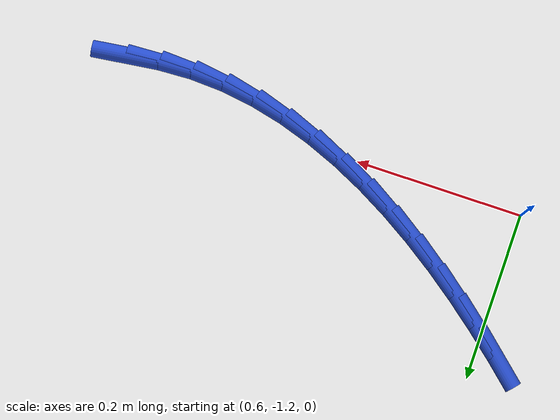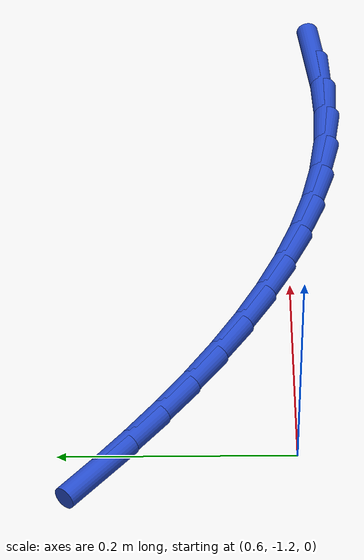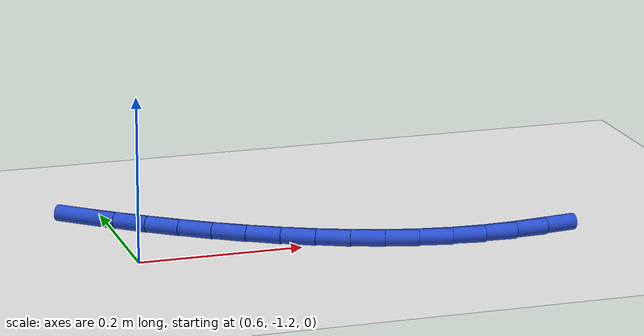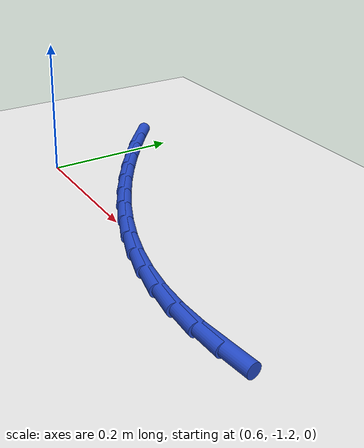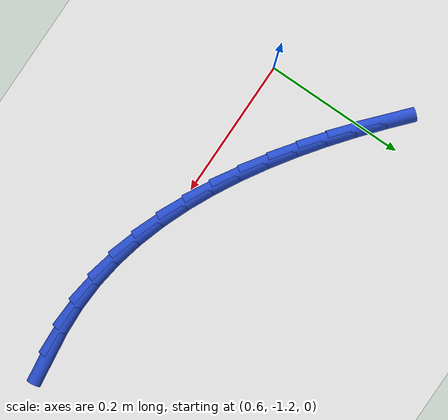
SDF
<sdf version="1.6">
 <world name="default">
  <model name="ground_plane">
   <static>1</static>
   <link name="link">
    <collision name="collision">
     <geometry><plane><normal>0 0 1</normal><size>100 100</size></plane></geometry>
     <surface><friction><ode><mu>100</mu><mu2>50</mu2></ode></friction></surface>
    </collision>
    <visual name="visual">
     <cast_shadows>0</cast_shadows>
     <geometry><plane><normal>0 0 1</normal><size>100 100</size></plane></geometry>
     <material>
      <script><uri>file://media/materials/scripts/gazebo.material</uri><name>Gazebo/WhiteGlow</name></script>
     </material>
    </visual>
   </link>
  </model>
  <model name="line">
   <link name="link_136">
    <pose>1.0949674980373876 -1.2326331208898942 0.01 0 1.57 0.12412468484557429</pose>
    <collision name="collision">
     <geometry><cylinder><radius>0.01</radius><length>0.08</length></cylinder></geometry>
    </collision>
    <visual name="visual">
     <material>
      <script><name>Gazebo/Blue</name><uri>file://media/materials/scripts/gazebo.material</uri></script>
     </material>
     <geometry><cylinder><radius>0.01</radius><length>0.08</length></cylinder></geometry>
    </visual>
   </link>
   <link name="link_137">
    <pose>1.0548576545804693 -1.2376374695670258 0.01 0 1.57 0.044833859428588925</pose>
    <collision name="collision">
     <geometry><cylinder><radius>0.01</radius><length>0.08</length></cylinder></geometry>
    </collision>
    <visual name="visual">
     <material>
      <script><name>Gazebo/Blue</name><uri>file://media/materials/scripts/gazebo.material</uri></script>
     </material>
     <geometry><cylinder><radius>0.01</radius><length>0.08</length></cylinder></geometry>
    </visual>
   </link>
   <link name="link_138">
    <pose>1.014861260041267 -1.2394318647481926 0.01 0 1.57 -0.04863371327911055</pose>
    <collision name="collision">
     <geometry><cylinder><radius>0.01</radius><length>0.08</length></cylinder></geometry>
    </collision>
    <visual name="visual">
     <material>
      <script><name>Gazebo/Blue</name><uri>file://media/materials/scripts/gazebo.material</uri></script>
     </material>
     <geometry><cylinder><radius>0.01</radius><length>0.08</length></cylinder></geometry>
    </visual>
   </link>
   <link name="link_139">
    <pose>0.9751271936048391 -1.2374979245702544 0.01 0 1.57 -0.14264046209608153</pose>
    <collision name="collision">
     <geometry><cylinder><radius>0.01</radius><length>0.08</length></cylinder></geometry>
    </collision>
    <visual name="visual">
     <material>
      <script><name>Gazebo/Blue</name><uri>file://media/materials/scripts/gazebo.material</uri></script>
     </material>
     <geometry><cylinder><radius>0.01</radius><length>0.08</length></cylinder></geometry>
    </visual>
   </link>
   <link name="link_140">
    <pose>0.93575017620417 -1.2318427626106578 0.01 0 1.57 -0.2292759803005397</pose>
    <collision name="collision">
     <geometry><cylinder><radius>0.01</radius><length>0.08</length></cylinder></geometry>
    </collision>
    <visual name="visual">
     <material>
      <script><name>Gazebo/Blue</name><uri>file://media/materials/scripts/gazebo.material</uri></script>
     </material>
     <geometry><cylinder><radius>0.01</radius><length>0.08</length></cylinder></geometry>
    </visual>
   </link>
   <link name="link_141">
    <pose>0.8967962557917649 -1.2227517052755754 0.01 0 1.57 -0.30805782431631884</pose>
    <collision name="collision">
     <geometry><cylinder><radius>0.01</radius><length>0.08</length></cylinder></geometry>
    </collision>
    <visual name="visual">
     <material>
      <script><name>Gazebo/Blue</name><uri>file://media/materials/scripts/gazebo.material</uri></script>
     </material>
     <geometry><cylinder><radius>0.01</radius><length>0.08</length></cylinder></geometry>
    </visual>
   </link>
   <link name="link_142">
    <pose>0.8583312188251612 -1.2105126162468063 0.01 0 1.57 -0.3790299349206624</pose>
    <collision name="collision">
     <geometry><cylinder><radius>0.01</radius><length>0.08</length></cylinder></geometry>
    </collision>
    <visual name="visual">
     <material>
      <script><name>Gazebo/Blue</name><uri>file://media/materials/scripts/gazebo.material</uri></script>
     </material>
     <geometry><cylinder><radius>0.01</radius><length>0.08</length></cylinder></geometry>
    </visual>
   </link>
   <link name="link_143">
    <pose>0.8204208517618988 -1.1954133592061504 0.01 0 1.57 -0.4425476646372453</pose>
    <collision name="collision">
     <geometry><cylinder><radius>0.01</radius><length>0.08</length></cylinder></geometry>
    </collision>
    <visual name="visual">
     <material>
      <script><name>Gazebo/Blue</name><uri>file://media/materials/scripts/gazebo.material</uri></script>
     </material>
     <geometry><cylinder><radius>0.01</radius><length>0.08</length></cylinder></geometry>
    </visual>
   </link>
   <link name="link_144">
    <pose>0.7831309410595154 -1.1777417978354083 0.01 0 1.57 -0.49914383138613216</pose>
    <collision name="collision">
     <geometry><cylinder><radius>0.01</radius><length>0.08</length></cylinder></geometry>
    </collision>
    <visual name="visual">
     <material>
      <script><name>Gazebo/Blue</name><uri>file://media/materials/scripts/gazebo.material</uri></script>
     </material>
     <geometry><cylinder><radius>0.01</radius><length>0.08</length></cylinder></geometry>
    </visual>
   </link>
   <link name="link_145">
    <pose>0.7465272731755495 -1.1577857958163793 0.01 0 1.57 -0.5494271538587682</pose>
    <collision name="collision">
     <geometry><cylinder><radius>0.01</radius><length>0.08</length></cylinder></geometry>
    </collision>
    <visual name="visual">
     <material>
      <script><name>Gazebo/Blue</name><uri>file://media/materials/scripts/gazebo.material</uri></script>
     </material>
     <geometry><cylinder><radius>0.01</radius><length>0.08</length></cylinder></geometry>
    </visual>
   </link>
   <link name="link_146">
    <pose>0.710675634567539 -1.135833216830863 0.01 0 1.57 -0.5940135972682602</pose>
    <collision name="collision">
     <geometry><cylinder><radius>0.01</radius><length>0.08</length></cylinder></geometry>
    </collision>
    <visual name="visual">
     <material>
      <script><name>Gazebo/Blue</name><uri>file://media/materials/scripts/gazebo.material</uri></script>
     </material>
     <geometry><cylinder><radius>0.01</radius><length>0.08</length></cylinder></geometry>
    </visual>
   </link>
   <link name="link_147">
    <pose>0.6756418116930226 -1.1121719245606592 0.01 0 1.57 -0.6334843490793167</pose>
    <collision name="collision">
     <geometry><cylinder><radius>0.01</radius><length>0.08</length></cylinder></geometry>
    </collision>
    <visual name="visual">
     <material>
      <script><name>Gazebo/Blue</name><uri>file://media/materials/scripts/gazebo.material</uri></script>
     </material>
     <geometry><cylinder><radius>0.01</radius><length>0.08</length></cylinder></geometry>
    </visual>
   </link>
   <link name="link_148">
    <pose>0.6414915910095378 -1.0870897826875676 0.01 0 1.57 -0.6683626067588718</pose>
    <collision name="collision">
     <geometry><cylinder><radius>0.01</radius><length>0.08</length></cylinder></geometry>
    </collision>
    <visual name="visual">
     <material>
      <script><name>Gazebo/Blue</name><uri>file://media/materials/scripts/gazebo.material</uri></script>
     </material>
     <geometry><cylinder><radius>0.01</radius><length>0.08</length></cylinder></geometry>
    </visual>
   </link>
   <link name="link_149">
    <pose>0.608290758974624 -1.0608746548933885 0.01 0 1.57 -0.699102283996863</pose>
    <collision name="collision">
     <geometry><cylinder><radius>0.01</radius><length>0.08</length></cylinder></geometry>
    </collision>
    <visual name="visual">
     <material>
      <script><name>Gazebo/Blue</name><uri>file://media/materials/scripts/gazebo.material</uri></script>
     </material>
     <geometry><cylinder><radius>0.01</radius><length>0.08</length></cylinder></geometry>
    </visual>
   </link>
   <link name="link_150">
    <pose>0.5761051020458194 -1.0338144048599216 0.01 0 1.57 -0.7264496308045014</pose>
    <collision name="collision">
     <geometry><cylinder><radius>0.01</radius><length>0.08</length></cylinder></geometry>
    </collision>
    <visual name="visual">
     <material>
      <script><name>Gazebo/Blue</name><uri>file://media/materials/scripts/gazebo.material</uri></script>
     </material>
     <geometry><cylinder><radius>0.01</radius><length>0.08</length></cylinder></geometry>
    </visual>
   </link>
  </model>
 </world>
</sdf>
